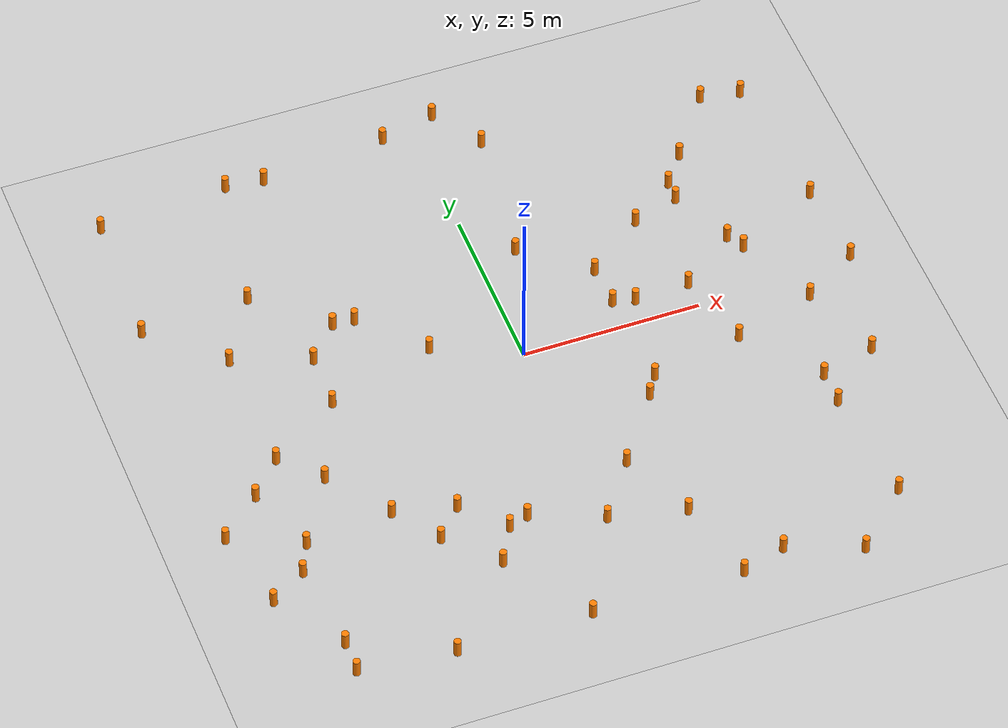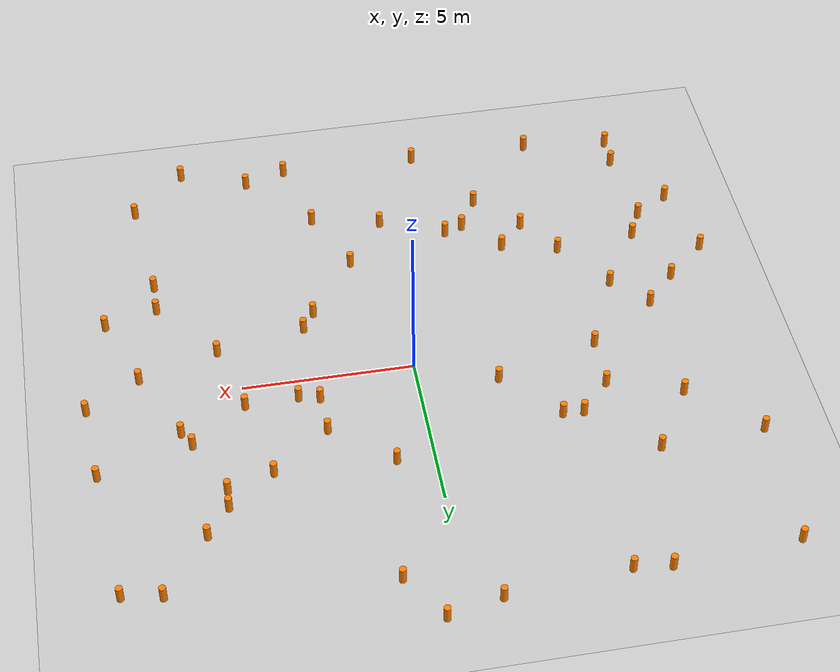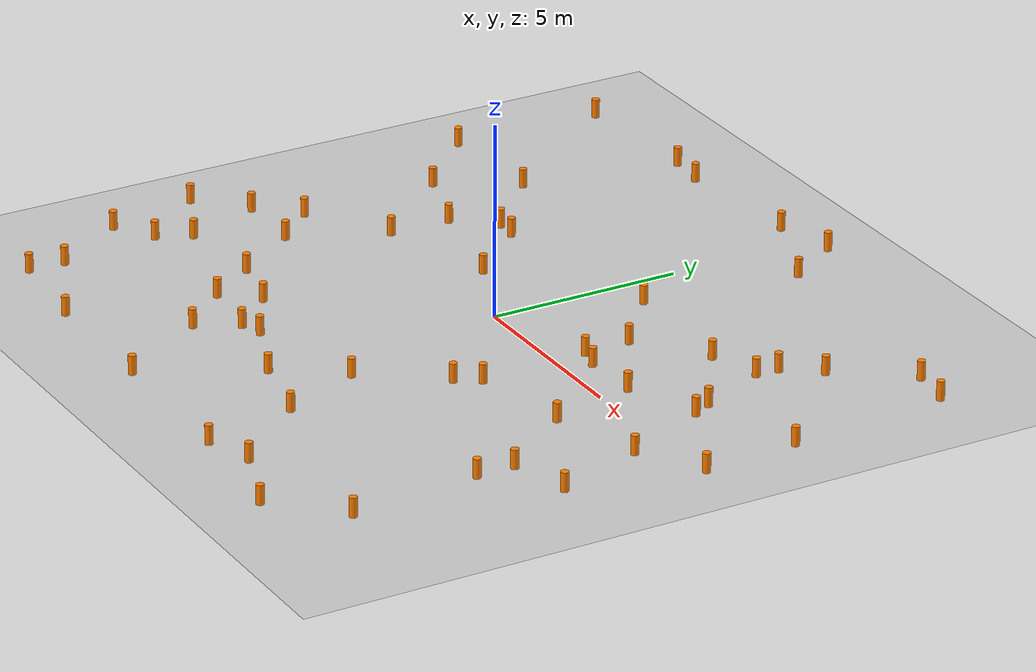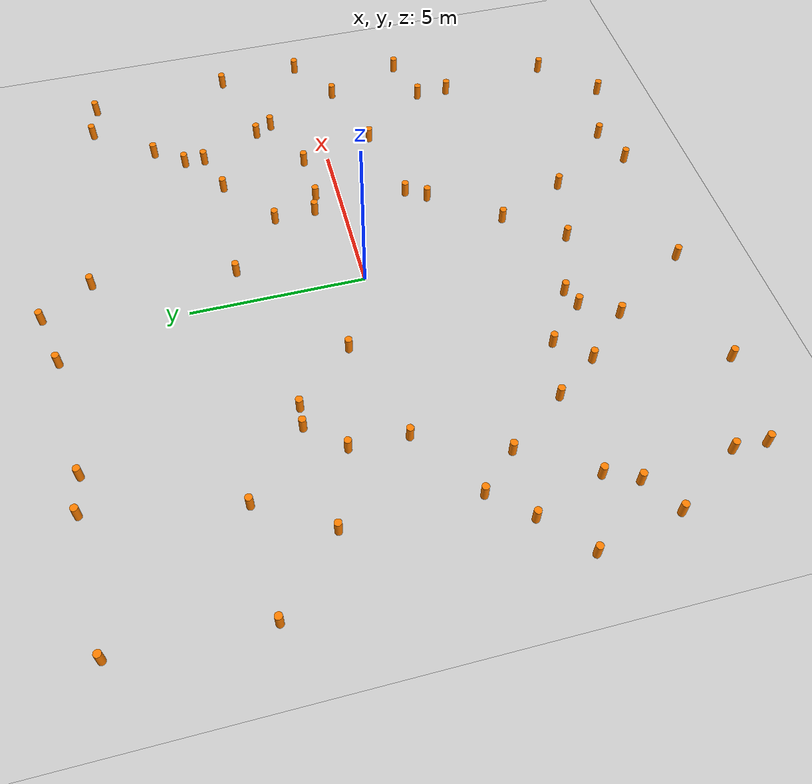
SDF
<?xml version="1.0" ?>
<sdf version="1.8">
  <world name="course_world">

    <!-- Physics (500 Hz) -->
    <physics name="500hz" type="dart">
      <max_step_size>0.002</max_step_size>
      <real_time_factor>1.0</real_time_factor>
      <real_time_update_rate>500</real_time_update_rate>
    </physics>

    <!-- Plugins -->
    <plugin filename="gz-sim-physics-system" name="gz::sim::systems::Physics"/>
    <plugin filename="gz-sim-sensors-system" name="gz::sim::systems::Sensors">
      <render_engine>ogre2</render_engine>
    </plugin>
    <plugin filename="gz-sim-user-commands-system" name="gz::sim::systems::UserCommands"/>
    <plugin filename="gz-sim-scene-broadcaster-system" name="gz::sim::systems::SceneBroadcaster"/>
    <plugin filename="gz-sim-contact-system" name="gz::sim::systems::Contact"/>

    <!-- Lighting -->
    <light type="directional" name="sun">
      <cast_shadows>false</cast_shadows>
      <pose>0 0 10 0 0 0</pose>
      <diffuse>0.8 0.8 0.8 1</diffuse>
      <specular>0.2 0.2 0.2 1</specular>
      <attenuation>
        <range>1000</range>
        <constant>0.9</constant>
        <linear>0.01</linear>
        <quadratic>0.001</quadratic>
      </attenuation>
      <direction>-0.5 0.1 -0.9</direction>
    </light>

    <!-- Ground Plane -->
    <model name="ground_plane">
      <static>true</static>
      <link name="link">
        <collision name="collision">
          <geometry>
            <plane>
              <normal>0 0 1</normal>
              <size>100 100</size>
            </plane>
          </geometry>
        </collision>
        <visual name="visual">
          <geometry>
            <plane>
              <normal>0 0 1</normal>
              <size>100 100</size>
            </plane>
          </geometry>
          <material>
            <ambient>0.8 0.8 0.8 1</ambient>
            <diffuse>0.8 0.8 0.8 1</diffuse>
            <specular>0.8 0.8 0.8 1</specular>
          </material>
        </visual>
      </link>
    </model>
    <model name="cylinder_1">
      <static>true</static>
      <pose>2.65 -9.02 0.25 0 0 0</pose>
      <link name="link">
        <collision name="collision">
          <geometry>
            <cylinder>
              <radius>0.1</radius>
              <length>0.5</length>
            </cylinder>
          </geometry>
        </collision>
        <visual name="visual">
          <geometry>
            <cylinder>
              <radius>0.1</radius>
              <length>0.5</length>
            </cylinder>
          </geometry>
          <material>
            <ambient>1 0.5 0 1</ambient>
            <diffuse>1 0.5 0 1</diffuse>
          </material>
        </visual>
      </link>
    </model>

    <model name="cylinder_2">
      <static>true</static>
      <pose>-4.27 -5.26 0.25 0 0 0</pose>
      <link name="link">
        <collision name="collision">
          <geometry>
            <cylinder>
              <radius>0.1</radius>
              <length>0.5</length>
            </cylinder>
          </geometry>
        </collision>
        <visual name="visual">
          <geometry>
            <cylinder>
              <radius>0.1</radius>
              <length>0.5</length>
            </cylinder>
          </geometry>
          <material>
            <ambient>1 0.5 0 1</ambient>
            <diffuse>1 0.5 0 1</diffuse>
          </material>
        </visual>
      </link>
    </model>

    <model name="cylinder_3">
      <static>true</static>
      <pose>4.49 3.36 0.25 0 0 0</pose>
      <link name="link">
        <collision name="collision">
          <geometry>
            <cylinder>
              <radius>0.1</radius>
              <length>0.5</length>
            </cylinder>
          </geometry>
        </collision>
        <visual name="visual">
          <geometry>
            <cylinder>
              <radius>0.1</radius>
              <length>0.5</length>
            </cylinder>
          </geometry>
          <material>
            <ambient>1 0.5 0 1</ambient>
            <diffuse>1 0.5 0 1</diffuse>
          </material>
        </visual>
      </link>
    </model>

    <model name="cylinder_4">
      <static>true</static>
      <pose>7.45 -7.85 0.25 0 0 0</pose>
      <link name="link">
        <collision name="collision">
          <geometry>
            <cylinder>
              <radius>0.1</radius>
              <length>0.5</length>
            </cylinder>
          </geometry>
        </collision>
        <visual name="visual">
          <geometry>
            <cylinder>
              <radius>0.1</radius>
              <length>0.5</length>
            </cylinder>
          </geometry>
          <material>
            <ambient>1 0.5 0 1</ambient>
            <diffuse>1 0.5 0 1</diffuse>
          </material>
        </visual>
      </link>
    </model>

    <model name="cylinder_5">
      <static>true</static>
      <pose>-1.48 -8.93 0.25 0 0 0</pose>
      <link name="link">
        <collision name="collision">
          <geometry>
            <cylinder>
              <radius>0.1</radius>
              <length>0.5</length>
            </cylinder>
          </geometry>
        </collision>
        <visual name="visual">
          <geometry>
            <cylinder>
              <radius>0.1</radius>
              <length>0.5</length>
            </cylinder>
          </geometry>
          <material>
            <ambient>1 0.5 0 1</ambient>
            <diffuse>1 0.5 0 1</diffuse>
          </material>
        </visual>
      </link>
    </model>

    <model name="cylinder_6">
      <static>true</static>
      <pose>-5.35 0.1 0.25 0 0 0</pose>
      <link name="link">
        <collision name="collision">
          <geometry>
            <cylinder>
              <radius>0.1</radius>
              <length>0.5</length>
            </cylinder>
          </geometry>
        </collision>
        <visual name="visual">
          <geometry>
            <cylinder>
              <radius>0.1</radius>
              <length>0.5</length>
            </cylinder>
          </geometry>
          <material>
            <ambient>1 0.5 0 1</ambient>
            <diffuse>1 0.5 0 1</diffuse>
          </material>
        </visual>
      </link>
    </model>

    <model name="cylinder_7">
      <static>true</static>
      <pose>-9.0 -5.72 0.25 0 0 0</pose>
      <link name="link">
        <collision name="collision">
          <geometry>
            <cylinder>
              <radius>0.1</radius>
              <length>0.5</length>
            </cylinder>
          </geometry>
        </collision>
        <visual name="visual">
          <geometry>
            <cylinder>
              <radius>0.1</radius>
              <length>0.5</length>
            </cylinder>
          </geometry>
          <material>
            <ambient>1 0.5 0 1</ambient>
            <diffuse>1 0.5 0 1</diffuse>
          </material>
        </visual>
      </link>
    </model>

    <model name="cylinder_8">
      <static>true</static>
      <pose>2.85 0.85 0.25 0 0 0</pose>
      <link name="link">
        <collision name="collision">
          <geometry>
            <cylinder>
              <radius>0.1</radius>
              <length>0.5</length>
            </cylinder>
          </geometry>
        </collision>
        <visual name="visual">
          <geometry>
            <cylinder>
              <radius>0.1</radius>
              <length>0.5</length>
            </cylinder>
          </geometry>
          <material>
            <ambient>1 0.5 0 1</ambient>
            <diffuse>1 0.5 0 1</diffuse>
          </material>
        </visual>
      </link>
    </model>

    <model name="cylinder_9">
      <static>true</static>
      <pose>-5.31 1.7 0.25 0 0 0</pose>
      <link name="link">
        <collision name="collision">
          <geometry>
            <cylinder>
              <radius>0.1</radius>
              <length>0.5</length>
            </cylinder>
          </geometry>
        </collision>
        <visual name="visual">
          <geometry>
            <cylinder>
              <radius>0.1</radius>
              <length>0.5</length>
            </cylinder>
          </geometry>
          <material>
            <ambient>1 0.5 0 1</ambient>
            <diffuse>1 0.5 0 1</diffuse>
          </material>
        </visual>
      </link>
    </model>

    <model name="cylinder_10">
      <static>true</static>
      <pose>5.88 -9.38 0.25 0 0 0</pose>
      <link name="link">
        <collision name="collision">
          <geometry>
            <cylinder>
              <radius>0.1</radius>
              <length>0.5</length>
            </cylinder>
          </geometry>
        </collision>
        <visual name="visual">
          <geometry>
            <cylinder>
              <radius>0.1</radius>
              <length>0.5</length>
            </cylinder>
          </geometry>
          <material>
            <ambient>1 0.5 0 1</ambient>
            <diffuse>1 0.5 0 1</diffuse>
          </material>
        </visual>
      </link>
    </model>

    <model name="cylinder_11">
      <static>true</static>
      <pose>5.81 3.76 0.25 0 0 0</pose>
      <link name="link">
        <collision name="collision">
          <geometry>
            <cylinder>
              <radius>0.1</radius>
              <length>0.5</length>
            </cylinder>
          </geometry>
        </collision>
        <visual name="visual">
          <geometry>
            <cylinder>
              <radius>0.1</radius>
              <length>0.5</length>
            </cylinder>
          </geometry>
          <material>
            <ambient>1 0.5 0 1</ambient>
            <diffuse>1 0.5 0 1</diffuse>
          </material>
        </visual>
      </link>
    </model>

    <model name="cylinder_12">
      <static>true</static>
      <pose>-3.04 -6.55 0.25 0 0 0</pose>
      <link name="link">
        <collision name="collision">
          <geometry>
            <cylinder>
              <radius>0.1</radius>
              <length>0.5</length>
            </cylinder>
          </geometry>
        </collision>
        <visual name="visual">
          <geometry>
            <cylinder>
              <radius>0.1</radius>
              <length>0.5</length>
            </cylinder>
          </geometry>
          <material>
            <ambient>1 0.5 0 1</ambient>
            <diffuse>1 0.5 0 1</diffuse>
          </material>
        </visual>
      </link>
    </model>

    <model name="cylinder_13">
      <static>true</static>
      <pose>8.69 -3.1 0.25 0 0 0</pose>
      <link name="link">
        <collision name="collision">
          <geometry>
            <cylinder>
              <radius>0.1</radius>
              <length>0.5</length>
            </cylinder>
          </geometry>
        </collision>
        <visual name="visual">
          <geometry>
            <cylinder>
              <radius>0.1</radius>
              <length>0.5</length>
            </cylinder>
          </geometry>
          <material>
            <ambient>1 0.5 0 1</ambient>
            <diffuse>1 0.5 0 1</diffuse>
          </material>
        </visual>
      </link>
    </model>

    <model name="cylinder_14">
      <static>true</static>
      <pose>-7.74 -7.66 0.25 0 0 0</pose>
      <link name="link">
        <collision name="collision">
          <geometry>
            <cylinder>
              <radius>0.1</radius>
              <length>0.5</length>
            </cylinder>
          </geometry>
        </collision>
        <visual name="visual">
          <geometry>
            <cylinder>
              <radius>0.1</radius>
              <length>0.5</length>
            </cylinder>
          </geometry>
          <material>
            <ambient>1 0.5 0 1</ambient>
            <diffuse>1 0.5 0 1</diffuse>
          </material>
        </visual>
      </link>
    </model>

    <model name="cylinder_15">
      <static>true</static>
      <pose>6.6 1.97 0.25 0 0 0</pose>
      <link name="link">
        <collision name="collision">
          <geometry>
            <cylinder>
              <radius>0.1</radius>
              <length>0.5</length>
            </cylinder>
          </geometry>
        </collision>
        <visual name="visual">
          <geometry>
            <cylinder>
              <radius>0.1</radius>
              <length>0.5</length>
            </cylinder>
          </geometry>
          <material>
            <ambient>1 0.5 0 1</ambient>
            <diffuse>1 0.5 0 1</diffuse>
          </material>
        </visual>
      </link>
    </model>

    <model name="cylinder_16">
      <static>true</static>
      <pose>5.84 4.36 0.25 0 0 0</pose>
      <link name="link">
        <collision name="collision">
          <geometry>
            <cylinder>
              <radius>0.1</radius>
              <length>0.5</length>
            </cylinder>
          </geometry>
        </collision>
        <visual name="visual">
          <geometry>
            <cylinder>
              <radius>0.1</radius>
              <length>0.5</length>
            </cylinder>
          </geometry>
          <material>
            <ambient>1 0.5 0 1</ambient>
            <diffuse>1 0.5 0 1</diffuse>
          </material>
        </visual>
      </link>
    </model>

    <model name="cylinder_17">
      <static>true</static>
      <pose>0.69 8.99 0.25 0 0 0</pose>
      <link name="link">
        <collision name="collision">
          <geometry>
            <cylinder>
              <radius>0.1</radius>
              <length>0.5</length>
            </cylinder>
          </geometry>
        </collision>
        <visual name="visual">
          <geometry>
            <cylinder>
              <radius>0.1</radius>
              <length>0.5</length>
            </cylinder>
          </geometry>
          <material>
            <ambient>1 0.5 0 1</ambient>
            <diffuse>1 0.5 0 1</diffuse>
          </material>
        </visual>
      </link>
    </model>

    <model name="cylinder_18">
      <static>true</static>
      <pose>-2.31 0.99 0.25 0 0 0</pose>
      <link name="link">
        <collision name="collision">
          <geometry>
            <cylinder>
              <radius>0.1</radius>
              <length>0.5</length>
            </cylinder>
          </geometry>
        </collision>
        <visual name="visual">
          <geometry>
            <cylinder>
              <radius>0.1</radius>
              <length>0.5</length>
            </cylinder>
          </geometry>
          <material>
            <ambient>1 0.5 0 1</ambient>
            <diffuse>1 0.5 0 1</diffuse>
          </material>
        </visual>
      </link>
    </model>

    <model name="cylinder_19">
      <static>true</static>
      <pose>6.87 1.47 0.25 0 0 0</pose>
      <link name="link">
        <collision name="collision">
          <geometry>
            <cylinder>
              <radius>0.1</radius>
              <length>0.5</length>
            </cylinder>
          </geometry>
        </collision>
        <visual name="visual">
          <geometry>
            <cylinder>
              <radius>0.1</radius>
              <length>0.5</length>
            </cylinder>
          </geometry>
          <material>
            <ambient>1 0.5 0 1</ambient>
            <diffuse>1 0.5 0 1</diffuse>
          </material>
        </visual>
      </link>
    </model>

    <model name="cylinder_20">
      <static>true</static>
      <pose>3.89 -8.63 0.25 0 0 0</pose>
      <link name="link">
        <collision name="collision">
          <geometry>
            <cylinder>
              <radius>0.1</radius>
              <length>0.5</length>
            </cylinder>
          </geometry>
        </collision>
        <visual name="visual">
          <geometry>
            <cylinder>
              <radius>0.1</radius>
              <length>0.5</length>
            </cylinder>
          </geometry>
          <material>
            <ambient>1 0.5 0 1</ambient>
            <diffuse>1 0.5 0 1</diffuse>
          </material>
        </visual>
      </link>
    </model>

    <model name="cylinder_21">
      <static>true</static>
      <pose>-5.17 -4.0 0.25 0 0 0</pose>
      <link name="link">
        <collision name="collision">
          <geometry>
            <cylinder>
              <radius>0.1</radius>
              <length>0.5</length>
            </cylinder>
          </geometry>
        </collision>
        <visual name="visual">
          <geometry>
            <cylinder>
              <radius>0.1</radius>
              <length>0.5</length>
            </cylinder>
          </geometry>
          <material>
            <ambient>1 0.5 0 1</ambient>
            <diffuse>1 0.5 0 1</diffuse>
          </material>
        </visual>
      </link>
    </model>

    <model name="cylinder_22">
      <static>true</static>
      <pose>-7.98 -5.08 0.25 0 0 0</pose>
      <link name="link">
        <collision name="collision">
          <geometry>
            <cylinder>
              <radius>0.1</radius>
              <length>0.5</length>
            </cylinder>
          </geometry>
        </collision>
        <visual name="visual">
          <geometry>
            <cylinder>
              <radius>0.1</radius>
              <length>0.5</length>
            </cylinder>
          </geometry>
          <material>
            <ambient>1 0.5 0 1</ambient>
            <diffuse>1 0.5 0 1</diffuse>
          </material>
        </visual>
      </link>
    </model>

    <model name="cylinder_23">
      <static>true</static>
      <pose>-7.58 -4.22 0.25 0 0 0</pose>
      <link name="link">
        <collision name="collision">
          <geometry>
            <cylinder>
              <radius>0.1</radius>
              <length>0.5</length>
            </cylinder>
          </geometry>
        </collision>
        <visual name="visual">
          <geometry>
            <cylinder>
              <radius>0.1</radius>
              <length>0.5</length>
            </cylinder>
          </geometry>
          <material>
            <ambient>1 0.5 0 1</ambient>
            <diffuse>1 0.5 0 1</diffuse>
          </material>
        </visual>
      </link>
    </model>

    <model name="cylinder_24">
      <static>true</static>
      <pose>2.58 -2.57 0.25 0 0 0</pose>
      <link name="link">
        <collision name="collision">
          <geometry>
            <cylinder>
              <radius>0.1</radius>
              <length>0.5</length>
            </cylinder>
          </geometry>
        </collision>
        <visual name="visual">
          <geometry>
            <cylinder>
              <radius>0.1</radius>
              <length>0.5</length>
            </cylinder>
          </geometry>
          <material>
            <ambient>1 0.5 0 1</ambient>
            <diffuse>1 0.5 0 1</diffuse>
          </material>
        </visual>
      </link>
    </model>

    <model name="cylinder_25">
      <static>true</static>
      <pose>-2.47 -5.52 0.25 0 0 0</pose>
      <link name="link">
        <collision name="collision">
          <geometry>
            <cylinder>
              <radius>0.1</radius>
              <length>0.5</length>
            </cylinder>
          </geometry>
        </collision>
        <visual name="visual">
          <geometry>
            <cylinder>
              <radius>0.1</radius>
              <length>0.5</length>
            </cylinder>
          </geometry>
          <material>
            <ambient>1 0.5 0 1</ambient>
            <diffuse>1 0.5 0 1</diffuse>
          </material>
        </visual>
      </link>
    </model>

    <model name="cylinder_26">
      <static>true</static>
      <pose>-4.43 8.3 0.25 0 0 0</pose>
      <link name="link">
        <collision name="collision">
          <geometry>
            <cylinder>
              <radius>0.1</radius>
              <length>0.5</length>
            </cylinder>
          </geometry>
        </collision>
        <visual name="visual">
          <geometry>
            <cylinder>
              <radius>0.1</radius>
              <length>0.5</length>
            </cylinder>
          </geometry>
          <material>
            <ambient>1 0.5 0 1</ambient>
            <diffuse>1 0.5 0 1</diffuse>
          </material>
        </visual>
      </link>
    </model>

    <model name="cylinder_27">
      <static>true</static>
      <pose>2.81 2.07 0.25 0 0 0</pose>
      <link name="link">
        <collision name="collision">
          <geometry>
            <cylinder>
              <radius>0.1</radius>
              <length>0.5</length>
            </cylinder>
          </geometry>
        </collision>
        <visual name="visual">
          <geometry>
            <cylinder>
              <radius>0.1</radius>
              <length>0.5</length>
            </cylinder>
          </geometry>
          <material>
            <ambient>1 0.5 0 1</ambient>
            <diffuse>1 0.5 0 1</diffuse>
          </material>
        </visual>
      </link>
    </model>

    <model name="cylinder_28">
      <static>true</static>
      <pose>-6.25 4.35 0.25 0 0 0</pose>
      <link name="link">
        <collision name="collision">
          <geometry>
            <cylinder>
              <radius>0.1</radius>
              <length>0.5</length>
            </cylinder>
          </geometry>
        </collision>
        <visual name="visual">
          <geometry>
            <cylinder>
              <radius>0.1</radius>
              <length>0.5</length>
            </cylinder>
          </geometry>
          <material>
            <ambient>1 0.5 0 1</ambient>
            <diffuse>1 0.5 0 1</diffuse>
          </material>
        </visual>
      </link>
    </model>

    <model name="cylinder_29">
      <static>true</static>
      <pose>-6.4 -2.29 0.25 0 0 0</pose>
      <link name="link">
        <collision name="collision">
          <geometry>
            <cylinder>
              <radius>0.1</radius>
              <length>0.5</length>
            </cylinder>
          </geometry>
        </collision>
        <visual name="visual">
          <geometry>
            <cylinder>
              <radius>0.1</radius>
              <length>0.5</length>
            </cylinder>
          </geometry>
          <material>
            <ambient>1 0.5 0 1</ambient>
            <diffuse>1 0.5 0 1</diffuse>
          </material>
        </visual>
      </link>
    </model>

    <model name="cylinder_30">
      <static>true</static>
      <pose>9.3 2.66 0.25 0 0 0</pose>
      <link name="link">
        <collision name="collision">
          <geometry>
            <cylinder>
              <radius>0.1</radius>
              <length>0.5</length>
            </cylinder>
          </geometry>
        </collision>
        <visual name="visual">
          <geometry>
            <cylinder>
              <radius>0.1</radius>
              <length>0.5</length>
            </cylinder>
          </geometry>
          <material>
            <ambient>1 0.5 0 1</ambient>
            <diffuse>1 0.5 0 1</diffuse>
          </material>
        </visual>
      </link>
    </model>

    <model name="cylinder_31">
      <static>true</static>
      <pose>1.08 3.51 0.25 0 0 0</pose>
      <link name="link">
        <collision name="collision">
          <geometry>
            <cylinder>
              <radius>0.1</radius>
              <length>0.5</length>
            </cylinder>
          </geometry>
        </collision>
        <visual name="visual">
          <geometry>
            <cylinder>
              <radius>0.1</radius>
              <length>0.5</length>
            </cylinder>
          </geometry>
          <material>
            <ambient>1 0.5 0 1</ambient>
            <diffuse>1 0.5 0 1</diffuse>
          </material>
        </visual>
      </link>
    </model>

    <model name="cylinder_32">
      <static>true</static>
      <pose>6.51 5.24 0.25 0 0 0</pose>
      <link name="link">
        <collision name="collision">
          <geometry>
            <cylinder>
              <radius>0.1</radius>
              <length>0.5</length>
            </cylinder>
          </geometry>
        </collision>
        <visual name="visual">
          <geometry>
            <cylinder>
              <radius>0.1</radius>
              <length>0.5</length>
            </cylinder>
          </geometry>
          <material>
            <ambient>1 0.5 0 1</ambient>
            <diffuse>1 0.5 0 1</diffuse>
          </material>
        </visual>
      </link>
    </model>

    <model name="cylinder_33">
      <static>true</static>
      <pose>-5.15 -8.89 0.25 0 0 0</pose>
      <link name="link">
        <collision name="collision">
          <geometry>
            <cylinder>
              <radius>0.1</radius>
              <length>0.5</length>
            </cylinder>
          </geometry>
        </collision>
        <visual name="visual">
          <geometry>
            <cylinder>
              <radius>0.1</radius>
              <length>0.5</length>
            </cylinder>
          </geometry>
          <material>
            <ambient>1 0.5 0 1</ambient>
            <diffuse>1 0.5 0 1</diffuse>
          </material>
        </visual>
      </link>
    </model>

    <model name="cylinder_34">
      <static>true</static>
      <pose>-3.51 -4.41 0.25 0 0 0</pose>
      <link name="link">
        <collision name="collision">
          <geometry>
            <cylinder>
              <radius>0.1</radius>
              <length>0.5</length>
            </cylinder>
          </geometry>
        </collision>
        <visual name="visual">
          <geometry>
            <cylinder>
              <radius>0.1</radius>
              <length>0.5</length>
            </cylinder>
          </geometry>
          <material>
            <ambient>1 0.5 0 1</ambient>
            <diffuse>1 0.5 0 1</diffuse>
          </material>
        </visual>
      </link>
    </model>

    <model name="cylinder_35">
      <static>true</static>
      <pose>-5.49 8.42 0.25 0 0 0</pose>
      <link name="link">
        <collision name="collision">
          <geometry>
            <cylinder>
              <radius>0.1</radius>
              <length>0.5</length>
            </cylinder>
          </geometry>
        </collision>
        <visual name="visual">
          <geometry>
            <cylinder>
              <radius>0.1</radius>
              <length>0.5</length>
            </cylinder>
          </geometry>
          <material>
            <ambient>1 0.5 0 1</ambient>
            <diffuse>1 0.5 0 1</diffuse>
          </material>
        </visual>
      </link>
    </model>

    <model name="cylinder_36">
      <static>true</static>
      <pose>7.15 -3.52 0.25 0 0 0</pose>
      <link name="link">
        <collision name="collision">
          <geometry>
            <cylinder>
              <radius>0.1</radius>
              <length>0.5</length>
            </cylinder>
          </geometry>
        </collision>
        <visual name="visual">
          <geometry>
            <cylinder>
              <radius>0.1</radius>
              <length>0.5</length>
            </cylinder>
          </geometry>
          <material>
            <ambient>1 0.5 0 1</ambient>
            <diffuse>1 0.5 0 1</diffuse>
          </material>
        </visual>
      </link>
    </model>

    <model name="cylinder_37">
      <static>true</static>
      <pose>2.95 -1.98 0.25 0 0 0</pose>
      <link name="link">
        <collision name="collision">
          <geometry>
            <cylinder>
              <radius>0.1</radius>
              <length>0.5</length>
            </cylinder>
          </geometry>
        </collision>
        <visual name="visual">
          <geometry>
            <cylinder>
              <radius>0.1</radius>
              <length>0.5</length>
            </cylinder>
          </geometry>
          <material>
            <ambient>1 0.5 0 1</ambient>
            <diffuse>1 0.5 0 1</diffuse>
          </material>
        </visual>
      </link>
    </model>

    <model name="cylinder_38">
      <static>true</static>
      <pose>7.88 -0.78 0.25 0 0 0</pose>
      <link name="link">
        <collision name="collision">
          <geometry>
            <cylinder>
              <radius>0.1</radius>
              <length>0.5</length>
            </cylinder>
          </geometry>
        </collision>
        <visual name="visual">
          <geometry>
            <cylinder>
              <radius>0.1</radius>
              <length>0.5</length>
            </cylinder>
          </geometry>
          <material>
            <ambient>1 0.5 0 1</ambient>
            <diffuse>1 0.5 0 1</diffuse>
          </material>
        </visual>
      </link>
    </model>

    <model name="cylinder_39">
      <static>true</static>
      <pose>1.17 -4.51 0.25 0 0 0</pose>
      <link name="link">
        <collision name="collision">
          <geometry>
            <cylinder>
              <radius>0.1</radius>
              <length>0.5</length>
            </cylinder>
          </geometry>
        </collision>
        <visual name="visual">
          <geometry>
            <cylinder>
              <radius>0.1</radius>
              <length>0.5</length>
            </cylinder>
          </geometry>
          <material>
            <ambient>1 0.5 0 1</ambient>
            <diffuse>1 0.5 0 1</diffuse>
          </material>
        </visual>
      </link>
    </model>

    <model name="cylinder_40">
      <static>true</static>
      <pose>1.61 7.56 0.25 0 0 0</pose>
      <link name="link">
        <collision name="collision">
          <geometry>
            <cylinder>
              <radius>0.1</radius>
              <length>0.5</length>
            </cylinder>
          </geometry>
        </collision>
        <visual name="visual">
          <geometry>
            <cylinder>
              <radius>0.1</radius>
              <length>0.5</length>
            </cylinder>
          </geometry>
          <material>
            <ambient>1 0.5 0 1</ambient>
            <diffuse>1 0.5 0 1</diffuse>
          </material>
        </visual>
      </link>
    </model>

    <model name="cylinder_41">
      <static>true</static>
      <pose>-1.91 -5.33 0.25 0 0 0</pose>
      <link name="link">
        <collision name="collision">
          <geometry>
            <cylinder>
              <radius>0.1</radius>
              <length>0.5</length>
            </cylinder>
          </geometry>
        </collision>
        <visual name="visual">
          <geometry>
            <cylinder>
              <radius>0.1</radius>
              <length>0.5</length>
            </cylinder>
          </geometry>
          <material>
            <ambient>1 0.5 0 1</ambient>
            <diffuse>1 0.5 0 1</diffuse>
          </material>
        </visual>
      </link>
    </model>

    <model name="cylinder_42">
      <static>true</static>
      <pose>9.45 0.18 0.25 0 0 0</pose>
      <link name="link">
        <collision name="collision">
          <geometry>
            <cylinder>
              <radius>0.1</radius>
              <length>0.5</length>
            </cylinder>
          </geometry>
        </collision>
        <visual name="visual">
          <geometry>
            <cylinder>
              <radius>0.1</radius>
              <length>0.5</length>
            </cylinder>
          </geometry>
          <material>
            <ambient>1 0.5 0 1</ambient>
            <diffuse>1 0.5 0 1</diffuse>
          </material>
        </visual>
      </link>
    </model>

    <model name="cylinder_43">
      <static>true</static>
      <pose>-7.77 -8.6 0.25 0 0 0</pose>
      <link name="link">
        <collision name="collision">
          <geometry>
            <cylinder>
              <radius>0.1</radius>
              <length>0.5</length>
            </cylinder>
          </geometry>
        </collision>
        <visual name="visual">
          <geometry>
            <cylinder>
              <radius>0.1</radius>
              <length>0.5</length>
            </cylinder>
          </geometry>
          <material>
            <ambient>1 0.5 0 1</ambient>
            <diffuse>1 0.5 0 1</diffuse>
          </material>
        </visual>
      </link>
    </model>

    <model name="cylinder_44">
      <static>true</static>
      <pose>-7.42 2.42 0.25 0 0 0</pose>
      <link name="link">
        <collision name="collision">
          <geometry>
            <cylinder>
              <radius>0.1</radius>
              <length>0.5</length>
            </cylinder>
          </geometry>
        </collision>
        <visual name="visual">
          <geometry>
            <cylinder>
              <radius>0.1</radius>
              <length>0.5</length>
            </cylinder>
          </geometry>
          <material>
            <ambient>1 0.5 0 1</ambient>
            <diffuse>1 0.5 0 1</diffuse>
          </material>
        </visual>
      </link>
    </model>

    <model name="cylinder_45">
      <static>true</static>
      <pose>5.55 -1.48 0.25 0 0 0</pose>
      <link name="link">
        <collision name="collision">
          <geometry>
            <cylinder>
              <radius>0.1</radius>
              <length>0.5</length>
            </cylinder>
          </geometry>
        </collision>
        <visual name="visual">
          <geometry>
            <cylinder>
              <radius>0.1</radius>
              <length>0.5</length>
            </cylinder>
          </geometry>
          <material>
            <ambient>1 0.5 0 1</ambient>
            <diffuse>1 0.5 0 1</diffuse>
          </material>
        </visual>
      </link>
    </model>

    <model name="cylinder_46">
      <static>true</static>
      <pose>-8.29 -2.25 0.25 0 0 0</pose>
      <link name="link">
        <collision name="collision">
          <geometry>
            <cylinder>
              <radius>0.1</radius>
              <length>0.5</length>
            </cylinder>
          </geometry>
        </collision>
        <visual name="visual">
          <geometry>
            <cylinder>
              <radius>0.1</radius>
              <length>0.5</length>
            </cylinder>
          </geometry>
          <material>
            <ambient>1 0.5 0 1</ambient>
            <diffuse>1 0.5 0 1</diffuse>
          </material>
        </visual>
      </link>
    </model>

    <model name="cylinder_47">
      <static>true</static>
      <pose>8.95 6.85 0.25 0 0 0</pose>
      <link name="link">
        <collision name="collision">
          <geometry>
            <cylinder>
              <radius>0.1</radius>
              <length>0.5</length>
            </cylinder>
          </geometry>
        </collision>
        <visual name="visual">
          <geometry>
            <cylinder>
              <radius>0.1</radius>
              <length>0.5</length>
            </cylinder>
          </geometry>
          <material>
            <ambient>1 0.5 0 1</ambient>
            <diffuse>1 0.5 0 1</diffuse>
          </material>
        </visual>
      </link>
    </model>

    <model name="cylinder_48">
      <static>true</static>
      <pose>-9.28 4.19 0.25 0 0 0</pose>
      <link name="link">
        <collision name="collision">
          <geometry>
            <cylinder>
              <radius>0.1</radius>
              <length>0.5</length>
            </cylinder>
          </geometry>
        </collision>
        <visual name="visual">
          <geometry>
            <cylinder>
              <radius>0.1</radius>
              <length>0.5</length>
            </cylinder>
          </geometry>
          <material>
            <ambient>1 0.5 0 1</ambient>
            <diffuse>1 0.5 0 1</diffuse>
          </material>
        </visual>
      </link>
    </model>

    <model name="cylinder_49">
      <static>true</static>
      <pose>3.45 0.7 0.25 0 0 0</pose>
      <link name="link">
        <collision name="collision">
          <geometry>
            <cylinder>
              <radius>0.1</radius>
              <length>0.5</length>
            </cylinder>
          </geometry>
        </collision>
        <visual name="visual">
          <geometry>
            <cylinder>
              <radius>0.1</radius>
              <length>0.5</length>
            </cylinder>
          </geometry>
          <material>
            <ambient>1 0.5 0 1</ambient>
            <diffuse>1 0.5 0 1</diffuse>
          </material>
        </visual>
      </link>
    </model>

    <model name="cylinder_50">
      <static>true</static>
      <pose>-4.43 2.68 0.25 0 0 0</pose>
      <link name="link">
        <collision name="collision">
          <geometry>
            <cylinder>
              <radius>0.1</radius>
              <length>0.5</length>
            </cylinder>
          </geometry>
        </collision>
        <visual name="visual">
          <geometry>
            <cylinder>
              <radius>0.1</radius>
              <length>0.5</length>
            </cylinder>
          </geometry>
          <material>
            <ambient>1 0.5 0 1</ambient>
            <diffuse>1 0.5 0 1</diffuse>
          </material>
        </visual>
      </link>
    </model>

    <model name="cylinder_51">
      <static>true</static>
      <pose>-7.38 -1.24 0.25 0 0 0</pose>
      <link name="link">
        <collision name="collision">
          <geometry>
            <cylinder>
              <radius>0.1</radius>
              <length>0.5</length>
            </cylinder>
          </geometry>
        </collision>
        <visual name="visual">
          <geometry>
            <cylinder>
              <radius>0.1</radius>
              <length>0.5</length>
            </cylinder>
          </geometry>
          <material>
            <ambient>1 0.5 0 1</ambient>
            <diffuse>1 0.5 0 1</diffuse>
          </material>
        </visual>
      </link>
    </model>

    <model name="cylinder_52">
      <static>true</static>
      <pose>-0.88 8.62 0.25 0 0 0</pose>
      <link name="link">
        <collision name="collision">
          <geometry>
            <cylinder>
              <radius>0.1</radius>
              <length>0.5</length>
            </cylinder>
          </geometry>
        </collision>
        <visual name="visual">
          <geometry>
            <cylinder>
              <radius>0.1</radius>
              <length>0.5</length>
            </cylinder>
          </geometry>
          <material>
            <ambient>1 0.5 0 1</ambient>
            <diffuse>1 0.5 0 1</diffuse>
          </material>
        </visual>
      </link>
    </model>

    <model name="cylinder_53">
      <static>true</static>
      <pose>7.14 -4.5 0.25 0 0 0</pose>
      <link name="link">
        <collision name="collision">
          <geometry>
            <cylinder>
              <radius>0.1</radius>
              <length>0.5</length>
            </cylinder>
          </geometry>
        </collision>
        <visual name="visual">
          <geometry>
            <cylinder>
              <radius>0.1</radius>
              <length>0.5</length>
            </cylinder>
          </geometry>
          <material>
            <ambient>1 0.5 0 1</ambient>
            <diffuse>1 0.5 0 1</diffuse>
          </material>
        </visual>
      </link>
    </model>

    <model name="cylinder_54">
      <static>true</static>
      <pose>0.01 -6.11 0.25 0 0 0</pose>
      <link name="link">
        <collision name="collision">
          <geometry>
            <cylinder>
              <radius>0.1</radius>
              <length>0.5</length>
            </cylinder>
          </geometry>
        </collision>
        <visual name="visual">
          <geometry>
            <cylinder>
              <radius>0.1</radius>
              <length>0.5</length>
            </cylinder>
          </geometry>
          <material>
            <ambient>1 0.5 0 1</ambient>
            <diffuse>1 0.5 0 1</diffuse>
          </material>
        </visual>
      </link>
    </model>

    <model name="cylinder_55">
      <static>true</static>
      <pose>7.84 7.04 0.25 0 0 0</pose>
      <link name="link">
        <collision name="collision">
          <geometry>
            <cylinder>
              <radius>0.1</radius>
              <length>0.5</length>
            </cylinder>
          </geometry>
        </collision>
        <visual name="visual">
          <geometry>
            <cylinder>
              <radius>0.1</radius>
              <length>0.5</length>
            </cylinder>
          </geometry>
          <material>
            <ambient>1 0.5 0 1</ambient>
            <diffuse>1 0.5 0 1</diffuse>
          </material>
        </visual>
      </link>
    </model>

    <model name="cylinder_56">
      <static>true</static>
      <pose>-3.83 2.64 0.25 0 0 0</pose>
      <link name="link">
        <collision name="collision">
          <geometry>
            <cylinder>
              <radius>0.1</radius>
              <length>0.5</length>
            </cylinder>
          </geometry>
        </collision>
        <visual name="visual">
          <geometry>
            <cylinder>
              <radius>0.1</radius>
              <length>0.5</length>
            </cylinder>
          </geometry>
          <material>
            <ambient>1 0.5 0 1</ambient>
            <diffuse>1 0.5 0 1</diffuse>
          </material>
        </visual>
      </link>
    </model>

    <model name="cylinder_57">
      <static>true</static>
      <pose>2.07 -6.6 0.25 0 0 0</pose>
      <link name="link">
        <collision name="collision">
          <geometry>
            <cylinder>
              <radius>0.1</radius>
              <length>0.5</length>
            </cylinder>
          </geometry>
        </collision>
        <visual name="visual">
          <geometry>
            <cylinder>
              <radius>0.1</radius>
              <length>0.5</length>
            </cylinder>
          </geometry>
          <material>
            <ambient>1 0.5 0 1</ambient>
            <diffuse>1 0.5 0 1</diffuse>
          </material>
        </visual>
      </link>
    </model>

    <model name="cylinder_58">
      <static>true</static>
      <pose>4.99 0.75 0.25 0 0 0</pose>
      <link name="link">
        <collision name="collision">
          <geometry>
            <cylinder>
              <radius>0.1</radius>
              <length>0.5</length>
            </cylinder>
          </geometry>
        </collision>
        <visual name="visual">
          <geometry>
            <cylinder>
              <radius>0.1</radius>
              <length>0.5</length>
            </cylinder>
          </geometry>
          <material>
            <ambient>1 0.5 0 1</ambient>
            <diffuse>1 0.5 0 1</diffuse>
          </material>
        </visual>
      </link>
    </model>

    <model name="cylinder_59">
      <static>true</static>
      <pose>-9.49 -3.34 0.25 0 0 0</pose>
      <link name="link">
        <collision name="collision">
          <geometry>
            <cylinder>
              <radius>0.1</radius>
              <length>0.5</length>
            </cylinder>
          </geometry>
        </collision>
        <visual name="visual">
          <geometry>
            <cylinder>
              <radius>0.1</radius>
              <length>0.5</length>
            </cylinder>
          </geometry>
          <material>
            <ambient>1 0.5 0 1</ambient>
            <diffuse>1 0.5 0 1</diffuse>
          </material>
        </visual>
      </link>
    </model>

    <model name="cylinder_60">
      <static>true</static>
      <pose>-9.13 8.15 0.25 0 0 0</pose>
      <link name="link">
        <collision name="collision">
          <geometry>
            <cylinder>
              <radius>0.1</radius>
              <length>0.5</length>
            </cylinder>
          </geometry>
        </collision>
        <visual name="visual">
          <geometry>
            <cylinder>
              <radius>0.1</radius>
              <length>0.5</length>
            </cylinder>
          </geometry>
          <material>
            <ambient>1 0.5 0 1</ambient>
            <diffuse>1 0.5 0 1</diffuse>
          </material>
        </visual>
      </link>
    </model>

  </world>
</sdf>
